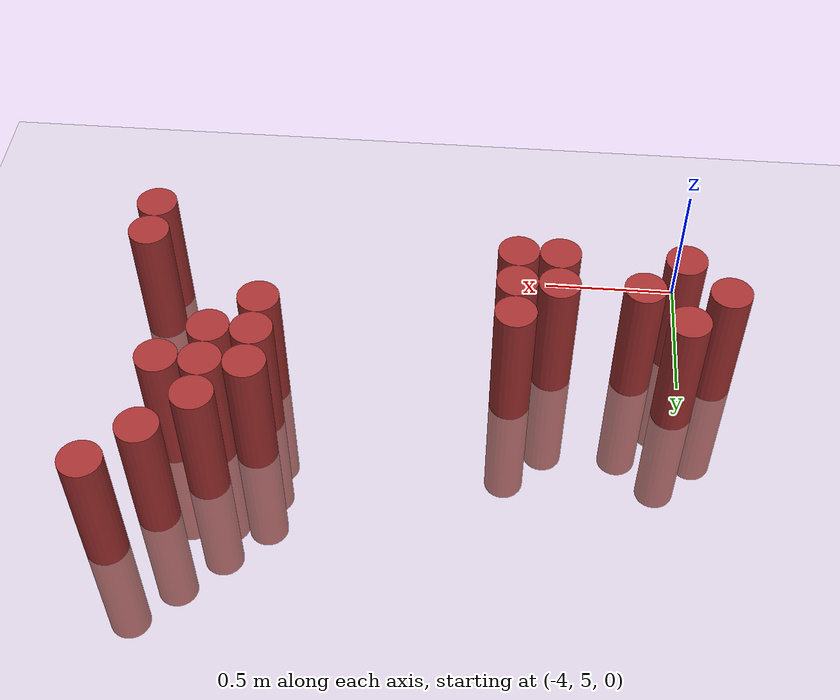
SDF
<sdf version="1.6">
 <world name="default">
  <model name="ground_plane">
   <static>1</static>
   <link name="link">
    <collision name="collision">
     <geometry><plane><normal>0 0 1</normal><size>100 100</size></plane></geometry>
     <surface><friction><ode><mu>100</mu><mu2>50</mu2></ode></friction></surface>
    </collision>
    <visual name="visual">
     <cast_shadows>0</cast_shadows>
     <geometry><plane><normal>0 0 1</normal><size>100 100</size></plane></geometry>
     <material>
      <script><uri>file://media/materials/scripts/gazebo.material</uri><name>Gazebo/Grey</name></script>
     </material>
    </visual>
   </link>
  </model>
  <model name="unit_cylinder_142">
   <static>1</static>
   <pose>-4.125000 5.475000 0.000000 0.000000 0.000000 0.000000</pose>
   <link name="link">
    <inertial>
     <mass>1</mass>
     <inertia><ixx>0.145833</ixx><ixy>0</ixy><ixz>0</ixz><iyy>0.145833</iyy><iyz>0</iyz><izz>0.125</izz></inertia>
    </inertial>
    <collision name="collision">
     <geometry><cylinder><radius>0.075000</radius><length>1</length></cylinder></geometry>
    </collision>
    <visual name="visual">
     <geometry><cylinder><radius>0.075000</radius><length>1</length></cylinder></geometry>
     <material>
      <ambient>0.648000 0.192000 0.192000 1</ambient>
      <diffuse>0.648000 0.192000 0.192000 1</diffuse>
     </material>
     <material>
      <script><name>Gazebo/Grey</name><uri>file://media/materials/scripts/gazebo.material</uri></script>
     </material>
    </visual>
    <sensor name="sensor_contact" type="contact"><contact><collision>collision</collision></contact></sensor>
   </link>
   <plugin filename="gz-sim-touchplugin-system" name="gz::sim::systems::TouchPlugin">
    <target>robot</target>
    <namespace>robot</namespace>
    <time>0.001</time>
    <enabled>true</enabled>
   </plugin>
  </model>
  <model name="unit_cylinder_149">
   <static>1</static>
   <pose>-3.975000 5.325000 0.000000 0.000000 0.000000 0.000000</pose>
   <link name="link">
    <inertial>
     <mass>1</mass>
     <inertia><ixx>0.145833</ixx><ixy>0</ixy><ixz>0</ixz><iyy>0.145833</iyy><iyz>0</iyz><izz>0.125</izz></inertia>
    </inertial>
    <collision name="collision">
     <geometry><cylinder><radius>0.075000</radius><length>1</length></cylinder></geometry>
    </collision>
    <visual name="visual">
     <geometry><cylinder><radius>0.075000</radius><length>1</length></cylinder></geometry>
     <material>
      <ambient>0.648000 0.192000 0.192000 1</ambient>
      <diffuse>0.648000 0.192000 0.192000 1</diffuse>
     </material>
     <material>
      <script><name>Gazebo/Grey</name><uri>file://media/materials/scripts/gazebo.material</uri></script>
     </material>
    </visual>
    <sensor name="sensor_contact" type="contact"><contact><collision>collision</collision></contact></sensor>
   </link>
   <plugin filename="gz-sim-touchplugin-system" name="gz::sim::systems::TouchPlugin">
    <target>robot</target>
    <namespace>robot</namespace>
    <time>0.001</time>
    <enabled>true</enabled>
   </plugin>
  </model>
  <model name="unit_cylinder_150">
   <static>1</static>
   <pose>-3.975000 5.625000 0.000000 0.000000 0.000000 0.000000</pose>
   <link name="link">
    <inertial>
     <mass>1</mass>
     <inertia><ixx>0.145833</ixx><ixy>0</ixy><ixz>0</ixz><iyy>0.145833</iyy><iyz>0</iyz><izz>0.125</izz></inertia>
    </inertial>
    <collision name="collision">
     <geometry><cylinder><radius>0.075000</radius><length>1</length></cylinder></geometry>
    </collision>
    <visual name="visual">
     <geometry><cylinder><radius>0.075000</radius><length>1</length></cylinder></geometry>
     <material>
      <ambient>0.648000 0.192000 0.192000 1</ambient>
      <diffuse>0.648000 0.192000 0.192000 1</diffuse>
     </material>
     <material>
      <script><name>Gazebo/Grey</name><uri>file://media/materials/scripts/gazebo.material</uri></script>
     </material>
    </visual>
    <sensor name="sensor_contact" type="contact"><contact><collision>collision</collision></contact></sensor>
   </link>
   <plugin filename="gz-sim-touchplugin-system" name="gz::sim::systems::TouchPlugin">
    <target>robot</target>
    <namespace>robot</namespace>
    <time>0.001</time>
    <enabled>true</enabled>
   </plugin>
  </model>
  <model name="unit_cylinder_155">
   <static>1</static>
   <pose>-3.825000 5.475000 0.000000 0.000000 0.000000 0.000000</pose>
   <link name="link">
    <inertial>
     <mass>1</mass>
     <inertia><ixx>0.145833</ixx><ixy>0</ixy><ixz>0</ixz><iyy>0.145833</iyy><iyz>0</iyz><izz>0.125</izz></inertia>
    </inertial>
    <collision name="collision">
     <geometry><cylinder><radius>0.075000</radius><length>1</length></cylinder></geometry>
    </collision>
    <visual name="visual">
     <geometry><cylinder><radius>0.075000</radius><length>1</length></cylinder></geometry>
     <material>
      <ambient>0.648000 0.192000 0.192000 1</ambient>
      <diffuse>0.648000 0.192000 0.192000 1</diffuse>
     </material>
     <material>
      <script><name>Gazebo/Grey</name><uri>file://media/materials/scripts/gazebo.material</uri></script>
     </material>
    </visual>
    <sensor name="sensor_contact" type="contact"><contact><collision>collision</collision></contact></sensor>
   </link>
   <plugin filename="gz-sim-touchplugin-system" name="gz::sim::systems::TouchPlugin">
    <target>robot</target>
    <namespace>robot</namespace>
    <time>0.001</time>
    <enabled>true</enabled>
   </plugin>
  </model>
  <model name="unit_cylinder_171">
   <static>1</static>
   <pose>-3.525000 5.325000 0.000000 0.000000 0.000000 0.000000</pose>
   <link name="link">
    <inertial>
     <mass>1</mass>
     <inertia><ixx>0.145833</ixx><ixy>0</ixy><ixz>0</ixz><iyy>0.145833</iyy><iyz>0</iyz><izz>0.125</izz></inertia>
    </inertial>
    <collision name="collision">
     <geometry><cylinder><radius>0.075000</radius><length>1</length></cylinder></geometry>
    </collision>
    <visual name="visual">
     <geometry><cylinder><radius>0.075000</radius><length>1</length></cylinder></geometry>
     <material>
      <ambient>0.648000 0.192000 0.192000 1</ambient>
      <diffuse>0.648000 0.192000 0.192000 1</diffuse>
     </material>
     <material>
      <script><name>Gazebo/Grey</name><uri>file://media/materials/scripts/gazebo.material</uri></script>
     </material>
    </visual>
    <sensor name="sensor_contact" type="contact"><contact><collision>collision</collision></contact></sensor>
   </link>
   <plugin filename="gz-sim-touchplugin-system" name="gz::sim::systems::TouchPlugin">
    <target>robot</target>
    <namespace>robot</namespace>
    <time>0.001</time>
    <enabled>true</enabled>
   </plugin>
  </model>
  <model name="unit_cylinder_172">
   <static>1</static>
   <pose>-3.525000 5.475000 0.000000 0.000000 0.000000 0.000000</pose>
   <link name="link">
    <inertial>
     <mass>1</mass>
     <inertia><ixx>0.145833</ixx><ixy>0</ixy><ixz>0</ixz><iyy>0.145833</iyy><iyz>0</iyz><izz>0.125</izz></inertia>
    </inertial>
    <collision name="collision">
     <geometry><cylinder><radius>0.075000</radius><length>1</length></cylinder></geometry>
    </collision>
    <visual name="visual">
     <geometry><cylinder><radius>0.075000</radius><length>1</length></cylinder></geometry>
     <material>
      <ambient>0.648000 0.192000 0.192000 1</ambient>
      <diffuse>0.648000 0.192000 0.192000 1</diffuse>
     </material>
     <material>
      <script><name>Gazebo/Grey</name><uri>file://media/materials/scripts/gazebo.material</uri></script>
     </material>
    </visual>
    <sensor name="sensor_contact" type="contact"><contact><collision>collision</collision></contact></sensor>
   </link>
   <plugin filename="gz-sim-touchplugin-system" name="gz::sim::systems::TouchPlugin">
    <target>robot</target>
    <namespace>robot</namespace>
    <time>0.001</time>
    <enabled>true</enabled>
   </plugin>
  </model>
  <model name="unit_cylinder_180">
   <static>1</static>
   <pose>-3.375000 5.325000 0.000000 0.000000 0.000000 0.000000</pose>
   <link name="link">
    <inertial>
     <mass>1</mass>
     <inertia><ixx>0.145833</ixx><ixy>0</ixy><ixz>0</ixz><iyy>0.145833</iyy><iyz>0</iyz><izz>0.125</izz></inertia>
    </inertial>
    <collision name="collision">
     <geometry><cylinder><radius>0.075000</radius><length>1</length></cylinder></geometry>
    </collision>
    <visual name="visual">
     <geometry><cylinder><radius>0.075000</radius><length>1</length></cylinder></geometry>
     <material>
      <ambient>0.648000 0.192000 0.192000 1</ambient>
      <diffuse>0.648000 0.192000 0.192000 1</diffuse>
     </material>
     <material>
      <script><name>Gazebo/Grey</name><uri>file://media/materials/scripts/gazebo.material</uri></script>
     </material>
    </visual>
    <sensor name="sensor_contact" type="contact"><contact><collision>collision</collision></contact></sensor>
   </link>
   <plugin filename="gz-sim-touchplugin-system" name="gz::sim::systems::TouchPlugin">
    <target>robot</target>
    <namespace>robot</namespace>
    <time>0.001</time>
    <enabled>true</enabled>
   </plugin>
  </model>
  <model name="unit_cylinder_181">
   <static>1</static>
   <pose>-3.375000 5.475000 0.000000 0.000000 0.000000 0.000000</pose>
   <link name="link">
    <inertial>
     <mass>1</mass>
     <inertia><ixx>0.145833</ixx><ixy>0</ixy><ixz>0</ixz><iyy>0.145833</iyy><iyz>0</iyz><izz>0.125</izz></inertia>
    </inertial>
    <collision name="collision">
     <geometry><cylinder><radius>0.075000</radius><length>1</length></cylinder></geometry>
    </collision>
    <visual name="visual">
     <geometry><cylinder><radius>0.075000</radius><length>1</length></cylinder></geometry>
     <material>
      <ambient>0.648000 0.192000 0.192000 1</ambient>
      <diffuse>0.648000 0.192000 0.192000 1</diffuse>
     </material>
     <material>
      <script><name>Gazebo/Grey</name><uri>file://media/materials/scripts/gazebo.material</uri></script>
     </material>
    </visual>
    <sensor name="sensor_contact" type="contact"><contact><collision>collision</collision></contact></sensor>
   </link>
   <plugin filename="gz-sim-touchplugin-system" name="gz::sim::systems::TouchPlugin">
    <target>robot</target>
    <namespace>robot</namespace>
    <time>0.001</time>
    <enabled>true</enabled>
   </plugin>
  </model>
  <model name="unit_cylinder_182">
   <static>1</static>
   <pose>-3.375000 5.625000 0.000000 0.000000 0.000000 0.000000</pose>
   <link name="link">
    <inertial>
     <mass>1</mass>
     <inertia><ixx>0.145833</ixx><ixy>0</ixy><ixz>0</ixz><iyy>0.145833</iyy><iyz>0</iyz><izz>0.125</izz></inertia>
    </inertial>
    <collision name="collision">
     <geometry><cylinder><radius>0.075000</radius><length>1</length></cylinder></geometry>
    </collision>
    <visual name="visual">
     <geometry><cylinder><radius>0.075000</radius><length>1</length></cylinder></geometry>
     <material>
      <ambient>0.648000 0.192000 0.192000 1</ambient>
      <diffuse>0.648000 0.192000 0.192000 1</diffuse>
     </material>
     <material>
      <script><name>Gazebo/Grey</name><uri>file://media/materials/scripts/gazebo.material</uri></script>
     </material>
    </visual>
    <sensor name="sensor_contact" type="contact"><contact><collision>collision</collision></contact></sensor>
   </link>
   <plugin filename="gz-sim-touchplugin-system" name="gz::sim::systems::TouchPlugin">
    <target>robot</target>
    <namespace>robot</namespace>
    <time>0.001</time>
    <enabled>true</enabled>
   </plugin>
  </model>
  <model name="unit_cylinder_188">
   <static>1</static>
   <pose>-2.475000 5.625000 0.000000 0.000000 0.000000 0.000000</pose>
   <link name="link">
    <inertial>
     <mass>1</mass>
     <inertia><ixx>0.145833</ixx><ixy>0</ixy><ixz>0</ixz><iyy>0.145833</iyy><iyz>0</iyz><izz>0.125</izz></inertia>
    </inertial>
    <collision name="collision">
     <geometry><cylinder><radius>0.075000</radius><length>1</length></cylinder></geometry>
    </collision>
    <visual name="visual">
     <geometry><cylinder><radius>0.075000</radius><length>1</length></cylinder></geometry>
     <material>
      <ambient>0.648000 0.192000 0.192000 1</ambient>
      <diffuse>0.648000 0.192000 0.192000 1</diffuse>
     </material>
     <material>
      <script><name>Gazebo/Grey</name><uri>file://media/materials/scripts/gazebo.material</uri></script>
     </material>
    </visual>
    <sensor name="sensor_contact" type="contact"><contact><collision>collision</collision></contact></sensor>
   </link>
   <plugin filename="gz-sim-touchplugin-system" name="gz::sim::systems::TouchPlugin">
    <target>robot</target>
    <namespace>robot</namespace>
    <time>0.001</time>
    <enabled>true</enabled>
   </plugin>
  </model>
  <model name="unit_cylinder_189">
   <static>1</static>
   <pose>-2.475000 5.775000 0.000000 0.000000 0.000000 0.000000</pose>
   <link name="link">
    <inertial>
     <mass>1</mass>
     <inertia><ixx>0.145833</ixx><ixy>0</ixy><ixz>0</ixz><iyy>0.145833</iyy><iyz>0</iyz><izz>0.125</izz></inertia>
    </inertial>
    <collision name="collision">
     <geometry><cylinder><radius>0.075000</radius><length>1</length></cylinder></geometry>
    </collision>
    <visual name="visual">
     <geometry><cylinder><radius>0.075000</radius><length>1</length></cylinder></geometry>
     <material>
      <ambient>0.648000 0.192000 0.192000 1</ambient>
      <diffuse>0.648000 0.192000 0.192000 1</diffuse>
     </material>
     <material>
      <script><name>Gazebo/Grey</name><uri>file://media/materials/scripts/gazebo.material</uri></script>
     </material>
    </visual>
    <sensor name="sensor_contact" type="contact"><contact><collision>collision</collision></contact></sensor>
   </link>
   <plugin filename="gz-sim-touchplugin-system" name="gz::sim::systems::TouchPlugin">
    <target>robot</target>
    <namespace>robot</namespace>
    <time>0.001</time>
    <enabled>true</enabled>
   </plugin>
  </model>
  <model name="unit_cylinder_190">
   <static>1</static>
   <pose>-2.475000 5.925000 0.000000 0.000000 0.000000 0.000000</pose>
   <link name="link">
    <inertial>
     <mass>1</mass>
     <inertia><ixx>0.145833</ixx><ixy>0</ixy><ixz>0</ixz><iyy>0.145833</iyy><iyz>0</iyz><izz>0.125</izz></inertia>
    </inertial>
    <collision name="collision">
     <geometry><cylinder><radius>0.075000</radius><length>1</length></cylinder></geometry>
    </collision>
    <visual name="visual">
     <geometry><cylinder><radius>0.075000</radius><length>1</length></cylinder></geometry>
     <material>
      <ambient>0.648000 0.192000 0.192000 1</ambient>
      <diffuse>0.648000 0.192000 0.192000 1</diffuse>
     </material>
     <material>
      <script><name>Gazebo/Grey</name><uri>file://media/materials/scripts/gazebo.material</uri></script>
     </material>
    </visual>
    <sensor name="sensor_contact" type="contact"><contact><collision>collision</collision></contact></sensor>
   </link>
   <plugin filename="gz-sim-touchplugin-system" name="gz::sim::systems::TouchPlugin">
    <target>robot</target>
    <namespace>robot</namespace>
    <time>0.001</time>
    <enabled>true</enabled>
   </plugin>
  </model>
  <model name="unit_cylinder_191">
   <static>1</static>
   <pose>-2.325000 5.775000 0.000000 0.000000 0.000000 0.000000</pose>
   <link name="link">
    <inertial>
     <mass>1</mass>
     <inertia><ixx>0.145833</ixx><ixy>0</ixy><ixz>0</ixz><iyy>0.145833</iyy><iyz>0</iyz><izz>0.125</izz></inertia>
    </inertial>
    <collision name="collision">
     <geometry><cylinder><radius>0.075000</radius><length>1</length></cylinder></geometry>
    </collision>
    <visual name="visual">
     <geometry><cylinder><radius>0.075000</radius><length>1</length></cylinder></geometry>
     <material>
      <ambient>0.648000 0.192000 0.192000 1</ambient>
      <diffuse>0.648000 0.192000 0.192000 1</diffuse>
     </material>
     <material>
      <script><name>Gazebo/Grey</name><uri>file://media/materials/scripts/gazebo.material</uri></script>
     </material>
    </visual>
    <sensor name="sensor_contact" type="contact"><contact><collision>collision</collision></contact></sensor>
   </link>
   <plugin filename="gz-sim-touchplugin-system" name="gz::sim::systems::TouchPlugin">
    <target>robot</target>
    <namespace>robot</namespace>
    <time>0.001</time>
    <enabled>true</enabled>
   </plugin>
  </model>
  <model name="unit_cylinder_192">
   <static>1</static>
   <pose>-2.325000 5.925000 0.000000 0.000000 0.000000 0.000000</pose>
   <link name="link">
    <inertial>
     <mass>1</mass>
     <inertia><ixx>0.145833</ixx><ixy>0</ixy><ixz>0</ixz><iyy>0.145833</iyy><iyz>0</iyz><izz>0.125</izz></inertia>
    </inertial>
    <collision name="collision">
     <geometry><cylinder><radius>0.075000</radius><length>1</length></cylinder></geometry>
    </collision>
    <visual name="visual">
     <geometry><cylinder><radius>0.075000</radius><length>1</length></cylinder></geometry>
     <material>
      <ambient>0.648000 0.192000 0.192000 1</ambient>
      <diffuse>0.648000 0.192000 0.192000 1</diffuse>
     </material>
     <material>
      <script><name>Gazebo/Grey</name><uri>file://media/materials/scripts/gazebo.material</uri></script>
     </material>
    </visual>
    <sensor name="sensor_contact" type="contact"><contact><collision>collision</collision></contact></sensor>
   </link>
   <plugin filename="gz-sim-touchplugin-system" name="gz::sim::systems::TouchPlugin">
    <target>robot</target>
    <namespace>robot</namespace>
    <time>0.001</time>
    <enabled>true</enabled>
   </plugin>
  </model>
  <model name="unit_cylinder_193">
   <static>1</static>
   <pose>-2.325000 6.075000 0.000000 0.000000 0.000000 0.000000</pose>
   <link name="link">
    <inertial>
     <mass>1</mass>
     <inertia><ixx>0.145833</ixx><ixy>0</ixy><ixz>0</ixz><iyy>0.145833</iyy><iyz>0</iyz><izz>0.125</izz></inertia>
    </inertial>
    <collision name="collision">
     <geometry><cylinder><radius>0.075000</radius><length>1</length></cylinder></geometry>
    </collision>
    <visual name="visual">
     <geometry><cylinder><radius>0.075000</radius><length>1</length></cylinder></geometry>
     <material>
      <ambient>0.648000 0.192000 0.192000 1</ambient>
      <diffuse>0.648000 0.192000 0.192000 1</diffuse>
     </material>
     <material>
      <script><name>Gazebo/Grey</name><uri>file://media/materials/scripts/gazebo.material</uri></script>
     </material>
    </visual>
    <sensor name="sensor_contact" type="contact"><contact><collision>collision</collision></contact></sensor>
   </link>
   <plugin filename="gz-sim-touchplugin-system" name="gz::sim::systems::TouchPlugin">
    <target>robot</target>
    <namespace>robot</namespace>
    <time>0.001</time>
    <enabled>true</enabled>
   </plugin>
  </model>
  <model name="unit_cylinder_195">
   <static>1</static>
   <pose>-2.175000 5.925000 0.000000 0.000000 0.000000 0.000000</pose>
   <link name="link">
    <inertial>
     <mass>1</mass>
     <inertia><ixx>0.145833</ixx><ixy>0</ixy><ixz>0</ixz><iyy>0.145833</iyy><iyz>0</iyz><izz>0.125</izz></inertia>
    </inertial>
    <collision name="collision">
     <geometry><cylinder><radius>0.075000</radius><length>1</length></cylinder></geometry>
    </collision>
    <visual name="visual">
     <geometry><cylinder><radius>0.075000</radius><length>1</length></cylinder></geometry>
     <material>
      <ambient>0.648000 0.192000 0.192000 1</ambient>
      <diffuse>0.648000 0.192000 0.192000 1</diffuse>
     </material>
     <material>
      <script><name>Gazebo/Grey</name><uri>file://media/materials/scripts/gazebo.material</uri></script>
     </material>
    </visual>
    <sensor name="sensor_contact" type="contact"><contact><collision>collision</collision></contact></sensor>
   </link>
   <plugin filename="gz-sim-touchplugin-system" name="gz::sim::systems::TouchPlugin">
    <target>robot</target>
    <namespace>robot</namespace>
    <time>0.001</time>
    <enabled>true</enabled>
   </plugin>
  </model>
  <model name="unit_cylinder_196">
   <static>1</static>
   <pose>-2.175000 6.225000 0.000000 0.000000 0.000000 0.000000</pose>
   <link name="link">
    <inertial>
     <mass>1</mass>
     <inertia><ixx>0.145833</ixx><ixy>0</ixy><ixz>0</ixz><iyy>0.145833</iyy><iyz>0</iyz><izz>0.125</izz></inertia>
    </inertial>
    <collision name="collision">
     <geometry><cylinder><radius>0.075000</radius><length>1</length></cylinder></geometry>
    </collision>
    <visual name="visual">
     <geometry><cylinder><radius>0.075000</radius><length>1</length></cylinder></geometry>
     <material>
      <ambient>0.648000 0.192000 0.192000 1</ambient>
      <diffuse>0.648000 0.192000 0.192000 1</diffuse>
     </material>
     <material>
      <script><name>Gazebo/Grey</name><uri>file://media/materials/scripts/gazebo.material</uri></script>
     </material>
    </visual>
    <sensor name="sensor_contact" type="contact"><contact><collision>collision</collision></contact></sensor>
   </link>
   <plugin filename="gz-sim-touchplugin-system" name="gz::sim::systems::TouchPlugin">
    <target>robot</target>
    <namespace>robot</namespace>
    <time>0.001</time>
    <enabled>true</enabled>
   </plugin>
  </model>
  <model name="unit_cylinder_201">
   <static>1</static>
   <pose>-2.025000 5.175000 0.000000 0.000000 0.000000 0.000000</pose>
   <link name="link">
    <inertial>
     <mass>1</mass>
     <inertia><ixx>0.145833</ixx><ixy>0</ixy><ixz>0</ixz><iyy>0.145833</iyy><iyz>0</iyz><izz>0.125</izz></inertia>
    </inertial>
    <collision name="collision">
     <geometry><cylinder><radius>0.075000</radius><length>1</length></cylinder></geometry>
    </collision>
    <visual name="visual">
     <geometry><cylinder><radius>0.075000</radius><length>1</length></cylinder></geometry>
     <material>
      <ambient>0.648000 0.192000 0.192000 1</ambient>
      <diffuse>0.648000 0.192000 0.192000 1</diffuse>
     </material>
     <material>
      <script><name>Gazebo/Grey</name><uri>file://media/materials/scripts/gazebo.material</uri></script>
     </material>
    </visual>
    <sensor name="sensor_contact" type="contact"><contact><collision>collision</collision></contact></sensor>
   </link>
   <plugin filename="gz-sim-touchplugin-system" name="gz::sim::systems::TouchPlugin">
    <target>robot</target>
    <namespace>robot</namespace>
    <time>0.001</time>
    <enabled>true</enabled>
   </plugin>
  </model>
  <model name="unit_cylinder_202">
   <static>1</static>
   <pose>-2.025000 5.325000 0.000000 0.000000 0.000000 0.000000</pose>
   <link name="link">
    <inertial>
     <mass>1</mass>
     <inertia><ixx>0.145833</ixx><ixy>0</ixy><ixz>0</ixz><iyy>0.145833</iyy><iyz>0</iyz><izz>0.125</izz></inertia>
    </inertial>
    <collision name="collision">
     <geometry><cylinder><radius>0.075000</radius><length>1</length></cylinder></geometry>
    </collision>
    <visual name="visual">
     <geometry><cylinder><radius>0.075000</radius><length>1</length></cylinder></geometry>
     <material>
      <ambient>0.648000 0.192000 0.192000 1</ambient>
      <diffuse>0.648000 0.192000 0.192000 1</diffuse>
     </material>
     <material>
      <script><name>Gazebo/Grey</name><uri>file://media/materials/scripts/gazebo.material</uri></script>
     </material>
    </visual>
    <sensor name="sensor_contact" type="contact"><contact><collision>collision</collision></contact></sensor>
   </link>
   <plugin filename="gz-sim-touchplugin-system" name="gz::sim::systems::TouchPlugin">
    <target>robot</target>
    <namespace>robot</namespace>
    <time>0.001</time>
    <enabled>true</enabled>
   </plugin>
  </model>
  <model name="unit_cylinder_203">
   <static>1</static>
   <pose>-2.025000 6.375000 0.000000 0.000000 0.000000 0.000000</pose>
   <link name="link">
    <inertial>
     <mass>1</mass>
     <inertia><ixx>0.145833</ixx><ixy>0</ixy><ixz>0</ixz><iyy>0.145833</iyy><iyz>0</iyz><izz>0.125</izz></inertia>
    </inertial>
    <collision name="collision">
     <geometry><cylinder><radius>0.075000</radius><length>1</length></cylinder></geometry>
    </collision>
    <visual name="visual">
     <geometry><cylinder><radius>0.075000</radius><length>1</length></cylinder></geometry>
     <material>
      <ambient>0.648000 0.192000 0.192000 1</ambient>
      <diffuse>0.648000 0.192000 0.192000 1</diffuse>
     </material>
     <material>
      <script><name>Gazebo/Grey</name><uri>file://media/materials/scripts/gazebo.material</uri></script>
     </material>
    </visual>
    <sensor name="sensor_contact" type="contact"><contact><collision>collision</collision></contact></sensor>
   </link>
   <plugin filename="gz-sim-touchplugin-system" name="gz::sim::systems::TouchPlugin">
    <target>robot</target>
    <namespace>robot</namespace>
    <time>0.001</time>
    <enabled>true</enabled>
   </plugin>
  </model>
 </world>
</sdf>
